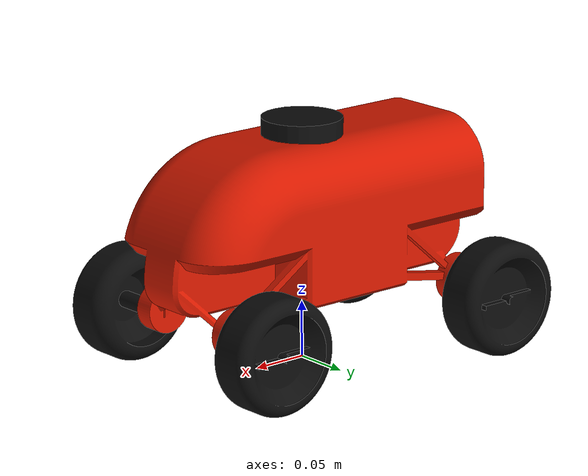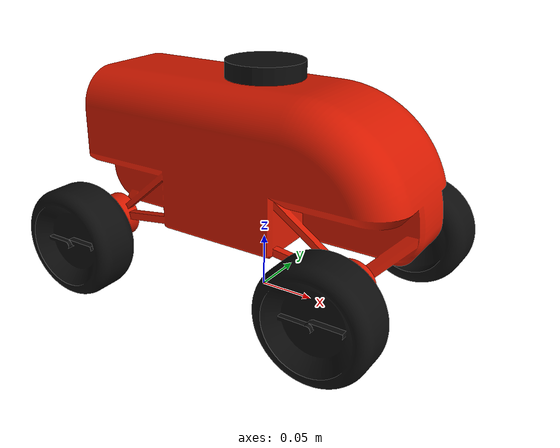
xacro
<?xml version="1.0"?>

<robot name="atv_ugv"
       xmlns:xacro="http://www.ros.org/wiki/xacro">

  <material name="red">
    <color rgba="0.85 0.10 0.00 1.0"/>
  </material>

  <material name="black">
    <color rgba="0.05 0.05 0.05 1.0"/>
  </material>

  <link name="base_footprint"/>

  <joint name="base_footprint_joint" type="fixed">
    <parent link="base_footprint"/>
    <child link="base_link"/>
    <origin xyz="0 0 0.182019755" rpy="0 0 0"/>
  </joint>

  <link name="base_link">
    <inertial>
      <origin xyz="0 0 0"/>
      <mass value="40.0"/>
      <inertia ixx="3.0" ixy="0.0" ixz="0.0"
               iyy="5.0" iyz="0.0" izz="6.0"/>
    </inertial>

    <visual>
      <origin xyz="0.0957436 -0.0675495 -0.1139803"/>
      <geometry>
        <mesh filename="package://atv_ugv_description/meshes/body.stl"
              scale="0.001 0.001 0.001"/>
      </geometry>
      <material name="red"/>
    </visual>

    <collision>
      <origin xyz="0 0 0.03"/>
      <geometry>
        <box size="0.35 0.18 0.06"/>
      </geometry>
    </collision>
  </link>

  <xacro:macro name="wheel"
    params="prefix x y z vx vy vz mesh">

    <link name="${prefix}_link">

      <inertial>
        <origin xyz="0 0 0"/>
        <mass value="5.0"/>
        <inertia
          ixx="0.06"
          ixy="0.0"
          ixz="0.0"
          iyy="0.06"
          iyz="0.0"
          izz="0.10"/>
      </inertial>

      <!-- ORIGINAL WHEEL VISUAL -->
      <visual>
        <origin xyz="${vx} ${vy} ${vz}" rpy="0 0 0"/>
        <geometry>
          <mesh filename="package://atv_ugv_description/meshes/${mesh}"
                scale="0.001 0.001 0.001"/>
        </geometry>
        <material name="black"/>
      </visual>

      <!-- CENTERED PHYSICAL WHEEL -->
      <collision>
        <origin xyz="0 0 0" rpy="1.57079632679 0 0"/>
        <geometry>
          <cylinder radius="0.05" length="0.08"/>
        </geometry>
      </collision>

    </link>

    <joint name="${prefix}_joint" type="continuous">
      <parent link="base_link"/>
      <child link="${prefix}_link"/>
      <origin xyz="${x} ${y} ${z}" rpy="0 0 0"/>
      <axis xyz="0 1 0"/>
    </joint>

  </xacro:macro>

  <xacro:wheel
    prefix="front_left"
    x="0.11119" y="0.08605" z="-0.132019755"
    vx="-0.019" vy="-0.140" vz="0.014"
    mesh="wheel_front_left.stl"/>

  <xacro:wheel
    prefix="front_right"
    x="0.11116" y="-0.08805" z="-0.132019755"
    vx="-0.020" vy="0.006" vz="0.015"
    mesh="wheel_front_right.stl"/>

  <xacro:wheel
    prefix="rear_left"
    x="-0.13591" y="0.09005" z="-0.132019755"
    vx="0.232" vy="-0.140" vz="0.014"
    mesh="wheel_rear_left.stl"/>

  <xacro:wheel
    prefix="rear_right"
    x="-0.13586" y="-0.08905" z="-0.132019755"
    vx="0.232" vy="0.006" vz="0.015"
    mesh="wheel_rear_right.stl"/>

  <link name="lidar_link">
    <visual>
      <geometry>
        <cylinder radius="0.035" length="0.04"/>
      </geometry>
      <material name="black"/>
    </visual>
  </link>

  <joint name="lidar_joint" type="fixed">
    <parent link="base_link"/>
    <child link="lidar_link"/>
    <origin xyz="0 0 0.011"/>
  </joint>

  <xacro:include filename="$(find atv_ugv_description)/urdf/ugv_gazebo.xacro"/>
  <xacro:include filename="$(find atv_ugv_description)/urdf/ugv_ros2_control.xacro"/>

</robot>
